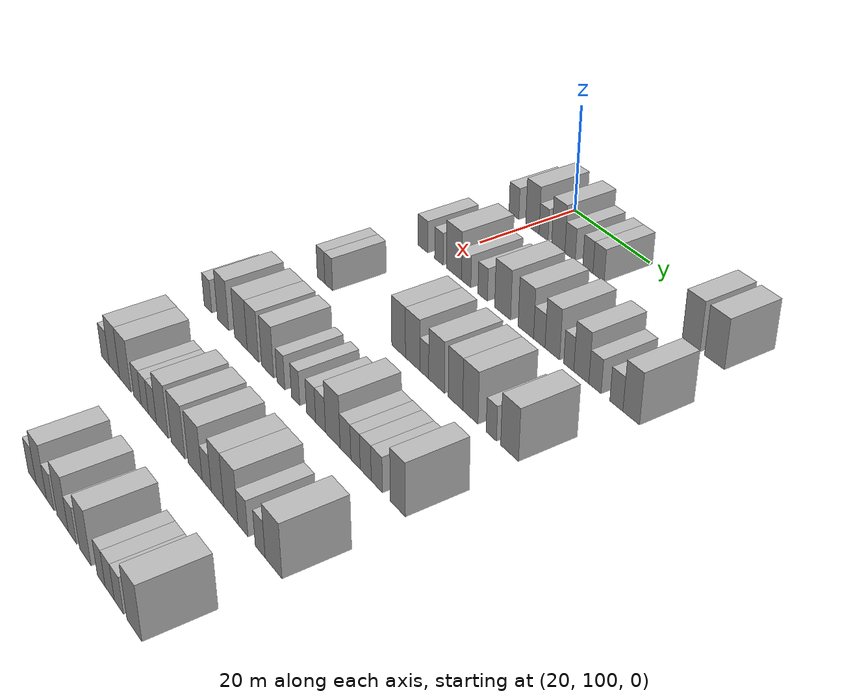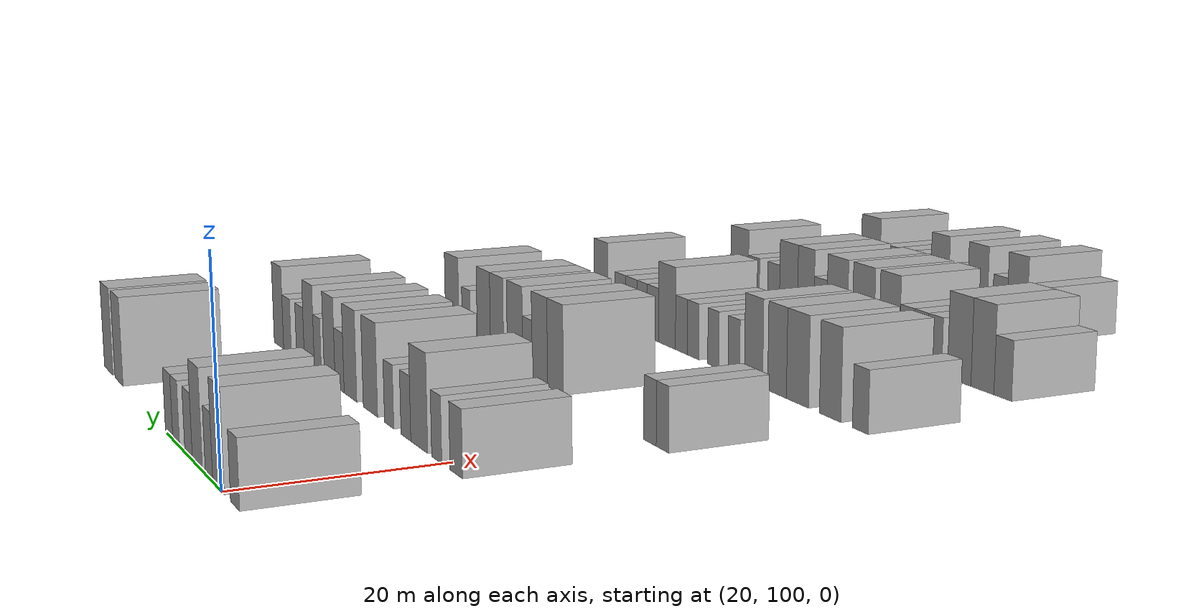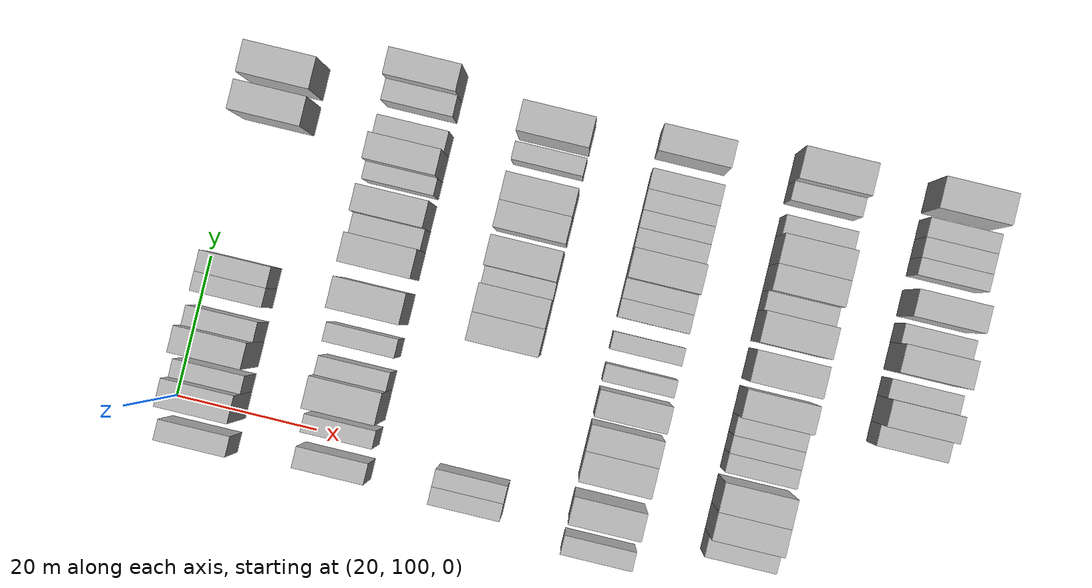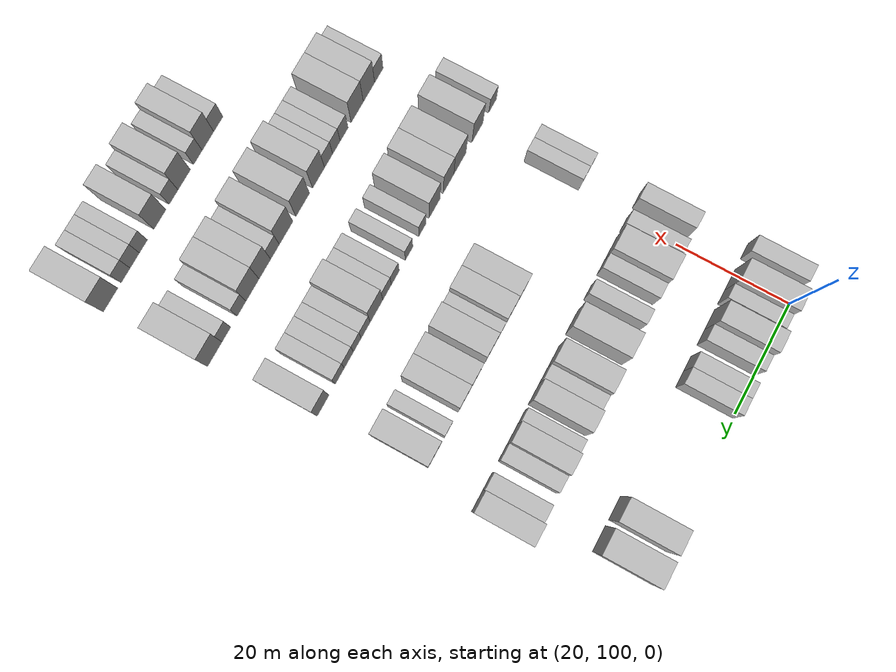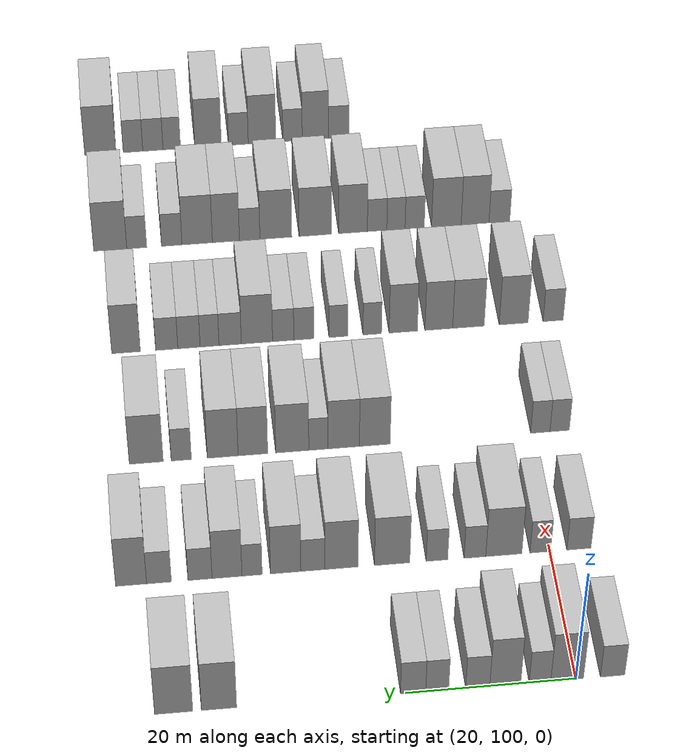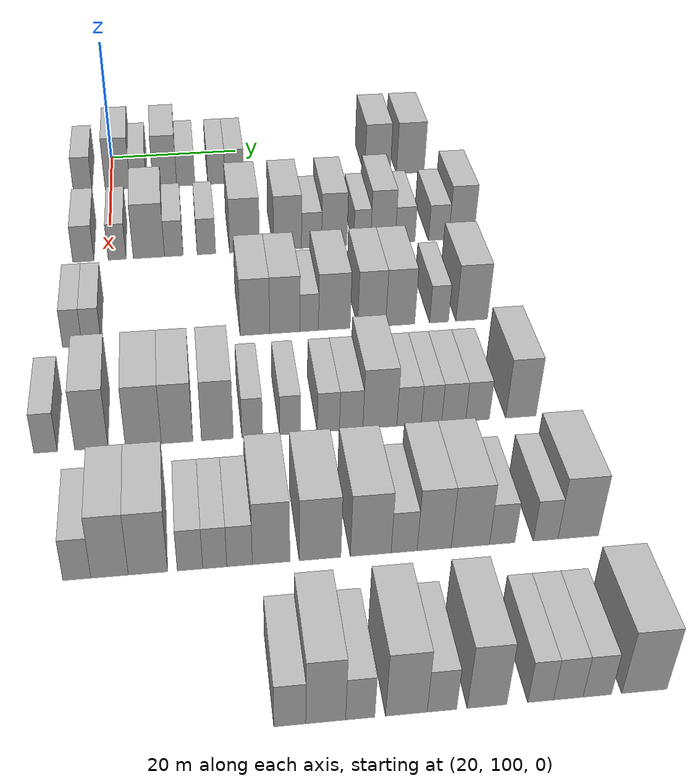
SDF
<sdf version="1.6">
 <world name="default">
  <model name="building_102">
   <static>1</static>
   <pose>25.0000 95.7003 0 0.000000 0.000000 0.000000</pose>
   <link name="link">
    <pose>0 0 3.00 0 0 0</pose>
    <collision name="collision"><geometry><box><size>10.0000 2.8826 6.0000</size></box></geometry></collision>
    <visual name="visual">
     <cast_shadows>0</cast_shadows>
     <geometry><box><size>10.0000 2.8826 6.0000</size></box></geometry>
     <material>
      <script>
       <uri>model://HANNAS_wall/materials/scripts</uri>
       <uri>model://HANNAS_wall/materials/textures</uri>
       <name>vrc/HANNAS_wall</name>
      </script>
     </material>
    </visual>
   </link>
  </model>
  <model name="building_103">
   <static>1</static>
   <pose>25.0000 101.0669 0 0.000000 0.000000 0.000000</pose>
   <link name="link">
    <pose>0 0 4.50 0 0 0</pose>
    <collision name="collision"><geometry><box><size>10.0000 3.8505 9.0000</size></box></geometry></collision>
    <visual name="visual">
     <cast_shadows>0</cast_shadows>
     <geometry><box><size>10.0000 3.8505 9.0000</size></box></geometry>
     <material>
      <script>
       <uri>model://HANNAS_wall/materials/scripts</uri>
       <uri>model://HANNAS_wall/materials/textures</uri>
       <name>vrc/HANNAS_wall</name>
      </script>
     </material>
    </visual>
   </link>
  </model>
  <model name="building_104">
   <static>1</static>
   <pose>25.0000 104.2623 0 0.000000 0.000000 0.000000</pose>
   <link name="link">
    <pose>0 0 3.00 0 0 0</pose>
    <collision name="collision"><geometry><box><size>10.0000 2.5403 6.0000</size></box></geometry></collision>
    <visual name="visual">
     <cast_shadows>0</cast_shadows>
     <geometry><box><size>10.0000 2.5403 6.0000</size></box></geometry>
     <material>
      <script>
       <uri>model://HANNAS_wall/materials/scripts</uri>
       <uri>model://HANNAS_wall/materials/textures</uri>
       <name>vrc/HANNAS_wall</name>
      </script>
     </material>
    </visual>
   </link>
  </model>
  <model name="building_105">
   <static>1</static>
   <pose>25.0000 108.3539 0 0.000000 0.000000 0.000000</pose>
   <link name="link">
    <pose>0 0 4.50 0 0 0</pose>
    <collision name="collision"><geometry><box><size>10.0000 3.6429 9.0000</size></box></geometry></collision>
    <visual name="visual">
     <cast_shadows>0</cast_shadows>
     <geometry><box><size>10.0000 3.6429 9.0000</size></box></geometry>
     <material>
      <script>
       <uri>model://HANNAS_wall/materials/scripts</uri>
       <uri>model://HANNAS_wall/materials/textures</uri>
       <name>vrc/HANNAS_wall</name>
      </script>
     </material>
    </visual>
   </link>
  </model>
  <model name="building_106">
   <static>1</static>
   <pose>25.0000 111.5871 0 0.000000 0.000000 0.000000</pose>
   <link name="link">
    <pose>0 0 3.00 0 0 0</pose>
    <collision name="collision"><geometry><box><size>10.0000 2.8235 6.0000</size></box></geometry></collision>
    <visual name="visual">
     <cast_shadows>0</cast_shadows>
     <geometry><box><size>10.0000 2.8235 6.0000</size></box></geometry>
     <material>
      <script>
       <uri>model://HANNAS_wall/materials/scripts</uri>
       <uri>model://HANNAS_wall/materials/textures</uri>
       <name>vrc/HANNAS_wall</name>
      </script>
     </material>
    </visual>
   </link>
  </model>
  <model name="building_107">
   <static>1</static>
   <pose>25.0000 116.3438 0 0.000000 0.000000 0.000000</pose>
   <link name="link">
    <pose>0 0 3.00 0 0 0</pose>
    <collision name="collision"><geometry><box><size>10.0000 2.6898 6.0000</size></box></geometry></collision>
    <visual name="visual">
     <cast_shadows>0</cast_shadows>
     <geometry><box><size>10.0000 2.6898 6.0000</size></box></geometry>
     <material>
      <script>
       <uri>model://HANNAS_wall/materials/scripts</uri>
       <uri>model://HANNAS_wall/materials/textures</uri>
       <name>vrc/HANNAS_wall</name>
      </script>
     </material>
    </visual>
   </link>
  </model>
  <model name="building_108">
   <static>1</static>
   <pose>25.0000 119.1616 0 0.000000 0.000000 0.000000</pose>
   <link name="link">
    <pose>0 0 3.00 0 0 0</pose>
    <collision name="collision"><geometry><box><size>10.0000 2.9459 6.0000</size></box></geometry></collision>
    <visual name="visual">
     <cast_shadows>0</cast_shadows>
     <geometry><box><size>10.0000 2.9459 6.0000</size></box></geometry>
     <material>
      <script>
       <uri>model://HANNAS_wall/materials/scripts</uri>
       <uri>model://HANNAS_wall/materials/textures</uri>
       <name>vrc/HANNAS_wall</name>
      </script>
     </material>
    </visual>
   </link>
  </model>
  <model name="building_109">
   <static>1</static>
   <pose>25.0000 141.7451 0 0.000000 0.000000 0.000000</pose>
   <link name="link">
    <pose>0 0 4.50 0 0 0</pose>
    <collision name="collision"><geometry><box><size>10.0000 4.0737 9.0000</size></box></geometry></collision>
    <visual name="visual">
     <cast_shadows>0</cast_shadows>
     <geometry><box><size>10.0000 4.0737 9.0000</size></box></geometry>
     <material>
      <script>
       <uri>model://HANNAS_wall/materials/scripts</uri>
       <uri>model://HANNAS_wall/materials/textures</uri>
       <name>vrc/HANNAS_wall</name>
      </script>
     </material>
    </visual>
   </link>
  </model>
  <model name="building_110">
   <static>1</static>
   <pose>25.0000 146.9889 0 0.000000 0.000000 0.000000</pose>
   <link name="link">
    <pose>0 0 4.50 0 0 0</pose>
    <collision name="collision"><geometry><box><size>10.0000 4.4137 9.0000</size></box></geometry></collision>
    <visual name="visual">
     <cast_shadows>0</cast_shadows>
     <geometry><box><size>10.0000 4.4137 9.0000</size></box></geometry>
     <material>
      <script>
       <uri>model://HANNAS_wall/materials/scripts</uri>
       <uri>model://HANNAS_wall/materials/textures</uri>
       <name>vrc/HANNAS_wall</name>
      </script>
     </material>
    </visual>
   </link>
  </model>
  <model name="building_267">
   <static>1</static>
   <pose>44.0000 96.4877 0 0.000000 0.000000 0.000000</pose>
   <link name="link">
    <pose>0 0 3.00 0 0 0</pose>
    <collision name="collision"><geometry><box><size>10.0000 2.9703 6.0000</size></box></geometry></collision>
    <visual name="visual">
     <cast_shadows>0</cast_shadows>
     <geometry><box><size>10.0000 2.9703 6.0000</size></box></geometry>
     <material>
      <script>
       <uri>model://HANNAS_wall/materials/scripts</uri>
       <uri>model://HANNAS_wall/materials/textures</uri>
       <name>vrc/HANNAS_wall</name>
      </script>
     </material>
    </visual>
   </link>
  </model>
  <model name="building_268">
   <static>1</static>
   <pose>44.0000 101.2369 0 0.000000 0.000000 0.000000</pose>
   <link name="link">
    <pose>0 0 3.00 0 0 0</pose>
    <collision name="collision"><geometry><box><size>10.0000 2.5279 6.0000</size></box></geometry></collision>
    <visual name="visual">
     <cast_shadows>0</cast_shadows>
     <geometry><box><size>10.0000 2.5279 6.0000</size></box></geometry>
     <material>
      <script>
       <uri>model://HANNAS_wall/materials/scripts</uri>
       <uri>model://HANNAS_wall/materials/textures</uri>
       <name>vrc/HANNAS_wall</name>
      </script>
     </material>
    </visual>
   </link>
  </model>
  <model name="building_269">
   <static>1</static>
   <pose>44.0000 105.7129 0 0.000000 0.000000 0.000000</pose>
   <link name="link">
    <pose>0 0 4.50 0 0 0</pose>
    <collision name="collision"><geometry><box><size>10.0000 4.4242 9.0000</size></box></geometry></collision>
    <visual name="visual">
     <cast_shadows>0</cast_shadows>
     <geometry><box><size>10.0000 4.4242 9.0000</size></box></geometry>
     <material>
      <script>
       <uri>model://HANNAS_wall/materials/scripts</uri>
       <uri>model://HANNAS_wall/materials/textures</uri>
       <name>vrc/HANNAS_wall</name>
      </script>
     </material>
    </visual>
   </link>
  </model>
  <model name="building_270">
   <static>1</static>
   <pose>44.0000 109.2523 0 0.000000 0.000000 0.000000</pose>
   <link name="link">
    <pose>0 0 3.00 0 0 0</pose>
    <collision name="collision"><geometry><box><size>10.0000 2.6546 6.0000</size></box></geometry></collision>
    <visual name="visual">
     <cast_shadows>0</cast_shadows>
     <geometry><box><size>10.0000 2.6546 6.0000</size></box></geometry>
     <material>
      <script>
       <uri>model://HANNAS_wall/materials/scripts</uri>
       <uri>model://HANNAS_wall/materials/textures</uri>
       <name>vrc/HANNAS_wall</name>
      </script>
     </material>
    </visual>
   </link>
  </model>
  <model name="building_271">
   <static>1</static>
   <pose>44.0000 113.8956 0 0.000000 0.000000 0.000000</pose>
   <link name="link">
    <pose>0 0 3.00 0 0 0</pose>
    <collision name="collision"><geometry><box><size>10.0000 2.6319 6.0000</size></box></geometry></collision>
    <visual name="visual">
     <cast_shadows>0</cast_shadows>
     <geometry><box><size>10.0000 2.6319 6.0000</size></box></geometry>
     <material>
      <script>
       <uri>model://HANNAS_wall/materials/scripts</uri>
       <uri>model://HANNAS_wall/materials/textures</uri>
       <name>vrc/HANNAS_wall</name>
      </script>
     </material>
    </visual>
   </link>
  </model>
  <model name="building_272">
   <static>1</static>
   <pose>44.0000 119.3631 0 0.000000 0.000000 0.000000</pose>
   <link name="link">
    <pose>0 0 4.50 0 0 0</pose>
    <collision name="collision"><geometry><box><size>10.0000 4.3031 9.0000</size></box></geometry></collision>
    <visual name="visual">
     <cast_shadows>0</cast_shadows>
     <geometry><box><size>10.0000 4.3031 9.0000</size></box></geometry>
     <material>
      <script>
       <uri>model://HANNAS_wall/materials/scripts</uri>
       <uri>model://HANNAS_wall/materials/textures</uri>
       <name>vrc/HANNAS_wall</name>
      </script>
     </material>
    </visual>
   </link>
  </model>
  <model name="building_273">
   <static>1</static>
   <pose>44.0000 125.5256 0 0.000000 0.000000 0.000000</pose>
   <link name="link">
    <pose>0 0 4.50 0 0 0</pose>
    <collision name="collision"><geometry><box><size>10.0000 4.0220 9.0000</size></box></geometry></collision>
    <visual name="visual">
     <cast_shadows>0</cast_shadows>
     <geometry><box><size>10.0000 4.0220 9.0000</size></box></geometry>
     <material>
      <script>
       <uri>model://HANNAS_wall/materials/scripts</uri>
       <uri>model://HANNAS_wall/materials/textures</uri>
       <name>vrc/HANNAS_wall</name>
      </script>
     </material>
    </visual>
   </link>
  </model>
  <model name="building_274">
   <static>1</static>
   <pose>44.0000 128.9947 0 0.000000 0.000000 0.000000</pose>
   <link name="link">
    <pose>0 0 3.00 0 0 0</pose>
    <collision name="collision"><geometry><box><size>10.0000 2.9161 6.0000</size></box></geometry></collision>
    <visual name="visual">
     <cast_shadows>0</cast_shadows>
     <geometry><box><size>10.0000 2.9161 6.0000</size></box></geometry>
     <material>
      <script>
       <uri>model://HANNAS_wall/materials/scripts</uri>
       <uri>model://HANNAS_wall/materials/textures</uri>
       <name>vrc/HANNAS_wall</name>
      </script>
     </material>
    </visual>
   </link>
  </model>
  <model name="building_275">
   <static>1</static>
   <pose>44.0000 132.2923 0 0.000000 0.000000 0.000000</pose>
   <link name="link">
    <pose>0 0 4.50 0 0 0</pose>
    <collision name="collision"><geometry><box><size>10.0000 3.6792 9.0000</size></box></geometry></collision>
    <visual name="visual">
     <cast_shadows>0</cast_shadows>
     <geometry><box><size>10.0000 3.6792 9.0000</size></box></geometry>
     <material>
      <script>
       <uri>model://HANNAS_wall/materials/scripts</uri>
       <uri>model://HANNAS_wall/materials/textures</uri>
       <name>vrc/HANNAS_wall</name>
      </script>
     </material>
    </visual>
   </link>
  </model>
  <model name="building_276">
   <static>1</static>
   <pose>44.0000 136.3563 0 0.000000 0.000000 0.000000</pose>
   <link name="link">
    <pose>0 0 3.00 0 0 0</pose>
    <collision name="collision"><geometry><box><size>10.0000 2.4487 6.0000</size></box></geometry></collision>
    <visual name="visual">
     <cast_shadows>0</cast_shadows>
     <geometry><box><size>10.0000 2.4487 6.0000</size></box></geometry>
     <material>
      <script>
       <uri>model://HANNAS_wall/materials/scripts</uri>
       <uri>model://HANNAS_wall/materials/textures</uri>
       <name>vrc/HANNAS_wall</name>
      </script>
     </material>
    </visual>
   </link>
  </model>
  <model name="building_277">
   <static>1</static>
   <pose>44.0000 139.3862 0 0.000000 0.000000 0.000000</pose>
   <link name="link">
    <pose>0 0 4.50 0 0 0</pose>
    <collision name="collision"><geometry><box><size>10.0000 3.6111 9.0000</size></box></geometry></collision>
    <visual name="visual">
     <cast_shadows>0</cast_shadows>
     <geometry><box><size>10.0000 3.6111 9.0000</size></box></geometry>
     <material>
      <script>
       <uri>model://HANNAS_wall/materials/scripts</uri>
       <uri>model://HANNAS_wall/materials/textures</uri>
       <name>vrc/HANNAS_wall</name>
      </script>
     </material>
    </visual>
   </link>
  </model>
  <model name="building_278">
   <static>1</static>
   <pose>44.0000 142.6418 0 0.000000 0.000000 0.000000</pose>
   <link name="link">
    <pose>0 0 3.00 0 0 0</pose>
    <collision name="collision"><geometry><box><size>10.0000 2.9002 6.0000</size></box></geometry></collision>
    <visual name="visual">
     <cast_shadows>0</cast_shadows>
     <geometry><box><size>10.0000 2.9002 6.0000</size></box></geometry>
     <material>
      <script>
       <uri>model://HANNAS_wall/materials/scripts</uri>
       <uri>model://HANNAS_wall/materials/textures</uri>
       <name>vrc/HANNAS_wall</name>
      </script>
     </material>
    </visual>
   </link>
  </model>
  <model name="building_279">
   <static>1</static>
   <pose>44.0000 147.5837 0 0.000000 0.000000 0.000000</pose>
   <link name="link">
    <pose>0 0 3.00 0 0 0</pose>
    <collision name="collision"><geometry><box><size>10.0000 2.9836 6.0000</size></box></geometry></collision>
    <visual name="visual">
     <cast_shadows>0</cast_shadows>
     <geometry><box><size>10.0000 2.9836 6.0000</size></box></geometry>
     <material>
      <script>
       <uri>model://HANNAS_wall/materials/scripts</uri>
       <uri>model://HANNAS_wall/materials/textures</uri>
       <name>vrc/HANNAS_wall</name>
      </script>
     </material>
    </visual>
   </link>
  </model>
  <model name="building_280">
   <static>1</static>
   <pose>44.0000 150.9347 0 0.000000 0.000000 0.000000</pose>
   <link name="link">
    <pose>0 0 4.50 0 0 0</pose>
    <collision name="collision"><geometry><box><size>10.0000 3.7184 9.0000</size></box></geometry></collision>
    <visual name="visual">
     <cast_shadows>0</cast_shadows>
     <geometry><box><size>10.0000 3.7184 9.0000</size></box></geometry>
     <material>
      <script>
       <uri>model://HANNAS_wall/materials/scripts</uri>
       <uri>model://HANNAS_wall/materials/textures</uri>
       <name>vrc/HANNAS_wall</name>
      </script>
     </material>
    </visual>
   </link>
  </model>
  <model name="building_436">
   <static>1</static>
   <pose>63.0000 95.7690 0 0.000000 0.000000 0.000000</pose>
   <link name="link">
    <pose>0 0 3.00 0 0 0</pose>
    <collision name="collision"><geometry><box><size>10.0000 2.4666 6.0000</size></box></geometry></collision>
    <visual name="visual">
     <cast_shadows>0</cast_shadows>
     <geometry><box><size>10.0000 2.4666 6.0000</size></box></geometry>
     <material>
      <script>
       <uri>model://HANNAS_wall/materials/scripts</uri>
       <uri>model://HANNAS_wall/materials/textures</uri>
       <name>vrc/HANNAS_wall</name>
      </script>
     </material>
    </visual>
   </link>
  </model>
  <model name="building_437">
   <static>1</static>
   <pose>63.0000 98.2369 0 0.000000 0.000000 0.000000</pose>
   <link name="link">
    <pose>0 0 3.00 0 0 0</pose>
    <collision name="collision"><geometry><box><size>10.0000 2.4693 6.0000</size></box></geometry></collision>
    <visual name="visual">
     <cast_shadows>0</cast_shadows>
     <geometry><box><size>10.0000 2.4693 6.0000</size></box></geometry>
     <material>
      <script>
       <uri>model://HANNAS_wall/materials/scripts</uri>
       <uri>model://HANNAS_wall/materials/textures</uri>
       <name>vrc/HANNAS_wall</name>
      </script>
     </material>
    </visual>
   </link>
  </model>
  <model name="building_438">
   <static>1</static>
   <pose>63.0000 119.3128 0 0.000000 0.000000 0.000000</pose>
   <link name="link">
    <pose>0 0 4.50 0 0 0</pose>
    <collision name="collision"><geometry><box><size>10.0000 3.8942 9.0000</size></box></geometry></collision>
    <visual name="visual">
     <cast_shadows>0</cast_shadows>
     <geometry><box><size>10.0000 3.8942 9.0000</size></box></geometry>
     <material>
      <script>
       <uri>model://HANNAS_wall/materials/scripts</uri>
       <uri>model://HANNAS_wall/materials/textures</uri>
       <name>vrc/HANNAS_wall</name>
      </script>
     </material>
    </visual>
   </link>
  </model>
  <model name="building_439">
   <static>1</static>
   <pose>63.0000 123.2383 0 0.000000 0.000000 0.000000</pose>
   <link name="link">
    <pose>0 0 4.50 0 0 0</pose>
    <collision name="collision"><geometry><box><size>10.0000 3.9567 9.0000</size></box></geometry></collision>
    <visual name="visual">
     <cast_shadows>0</cast_shadows>
     <geometry><box><size>10.0000 3.9567 9.0000</size></box></geometry>
     <material>
      <script>
       <uri>model://HANNAS_wall/materials/scripts</uri>
       <uri>model://HANNAS_wall/materials/textures</uri>
       <name>vrc/HANNAS_wall</name>
      </script>
     </material>
    </visual>
   </link>
  </model>
  <model name="building_440">
   <static>1</static>
   <pose>63.0000 126.4315 0 0.000000 0.000000 0.000000</pose>
   <link name="link">
    <pose>0 0 3.00 0 0 0</pose>
    <collision name="collision"><geometry><box><size>10.0000 2.4296 6.0000</size></box></geometry></collision>
    <visual name="visual">
     <cast_shadows>0</cast_shadows>
     <geometry><box><size>10.0000 2.4296 6.0000</size></box></geometry>
     <material>
      <script>
       <uri>model://HANNAS_wall/materials/scripts</uri>
       <uri>model://HANNAS_wall/materials/textures</uri>
       <name>vrc/HANNAS_wall</name>
      </script>
     </material>
    </visual>
   </link>
  </model>
  <model name="building_441">
   <static>1</static>
   <pose>63.0000 129.7364 0 0.000000 0.000000 0.000000</pose>
   <link name="link">
    <pose>0 0 4.50 0 0 0</pose>
    <collision name="collision"><geometry><box><size>10.0000 4.1802 9.0000</size></box></geometry></collision>
    <visual name="visual">
     <cast_shadows>0</cast_shadows>
     <geometry><box><size>10.0000 4.1802 9.0000</size></box></geometry>
     <material>
      <script>
       <uri>model://HANNAS_wall/materials/scripts</uri>
       <uri>model://HANNAS_wall/materials/textures</uri>
       <name>vrc/HANNAS_wall</name>
      </script>
     </material>
    </visual>
   </link>
  </model>
  <model name="building_442">
   <static>1</static>
   <pose>63.0000 134.6900 0 0.000000 0.000000 0.000000</pose>
   <link name="link">
    <pose>0 0 4.50 0 0 0</pose>
    <collision name="collision"><geometry><box><size>10.0000 3.7271 9.0000</size></box></geometry></collision>
    <visual name="visual">
     <cast_shadows>0</cast_shadows>
     <geometry><box><size>10.0000 3.7271 9.0000</size></box></geometry>
     <material>
      <script>
       <uri>model://HANNAS_wall/materials/scripts</uri>
       <uri>model://HANNAS_wall/materials/textures</uri>
       <name>vrc/HANNAS_wall</name>
      </script>
     </material>
    </visual>
   </link>
  </model>
  <model name="building_443">
   <static>1</static>
   <pose>63.0000 138.4889 0 0.000000 0.000000 0.000000</pose>
   <link name="link">
    <pose>0 0 4.50 0 0 0</pose>
    <collision name="collision"><geometry><box><size>10.0000 3.8706 9.0000</size></box></geometry></collision>
    <visual name="visual">
     <cast_shadows>0</cast_shadows>
     <geometry><box><size>10.0000 3.8706 9.0000</size></box></geometry>
     <material>
      <script>
       <uri>model://HANNAS_wall/materials/scripts</uri>
       <uri>model://HANNAS_wall/materials/textures</uri>
       <name>vrc/HANNAS_wall</name>
      </script>
     </material>
    </visual>
   </link>
  </model>
  <model name="building_444">
   <static>1</static>
   <pose>63.0000 143.6901 0 0.000000 0.000000 0.000000</pose>
   <link name="link">
    <pose>0 0 3.00 0 0 0</pose>
    <collision name="collision"><geometry><box><size>10.0000 2.5319 6.0000</size></box></geometry></collision>
    <visual name="visual">
     <cast_shadows>0</cast_shadows>
     <geometry><box><size>10.0000 2.5319 6.0000</size></box></geometry>
     <material>
      <script>
       <uri>model://HANNAS_wall/materials/scripts</uri>
       <uri>model://HANNAS_wall/materials/textures</uri>
       <name>vrc/HANNAS_wall</name>
      </script>
     </material>
    </visual>
   </link>
  </model>
  <model name="building_445">
   <static>1</static>
   <pose>63.0000 148.0767 0 0.000000 0.000000 0.000000</pose>
   <link name="link">
    <pose>0 0 4.50 0 0 0</pose>
    <collision name="collision"><geometry><box><size>10.0000 4.2413 9.0000</size></box></geometry></collision>
    <visual name="visual">
     <cast_shadows>0</cast_shadows>
     <geometry><box><size>10.0000 4.2413 9.0000</size></box></geometry>
     <material>
      <script>
       <uri>model://HANNAS_wall/materials/scripts</uri>
       <uri>model://HANNAS_wall/materials/textures</uri>
       <name>vrc/HANNAS_wall</name>
      </script>
     </material>
    </visual>
   </link>
  </model>
  <model name="building_612">
   <static>1</static>
   <pose>82.0000 93.5428 0 0.000000 0.000000 0.000000</pose>
   <link name="link">
    <pose>0 0 3.00 0 0 0</pose>
    <collision name="collision"><geometry><box><size>10.0000 2.6677 6.0000</size></box></geometry></collision>
    <visual name="visual">
     <cast_shadows>0</cast_shadows>
     <geometry><box><size>10.0000 2.6677 6.0000</size></box></geometry>
     <material>
      <script>
       <uri>model://HANNAS_wall/materials/scripts</uri>
       <uri>model://HANNAS_wall/materials/textures</uri>
       <name>vrc/HANNAS_wall</name>
      </script>
     </material>
    </visual>
   </link>
  </model>
  <model name="building_613">
   <static>1</static>
   <pose>82.0000 98.7870 0 0.000000 0.000000 0.000000</pose>
   <link name="link">
    <pose>0 0 4.50 0 0 0</pose>
    <collision name="collision"><geometry><box><size>10.0000 3.8207 9.0000</size></box></geometry></collision>
    <visual name="visual">
     <cast_shadows>0</cast_shadows>
     <geometry><box><size>10.0000 3.8207 9.0000</size></box></geometry>
     <material>
      <script>
       <uri>model://HANNAS_wall/materials/scripts</uri>
       <uri>model://HANNAS_wall/materials/textures</uri>
       <name>vrc/HANNAS_wall</name>
      </script>
     </material>
    </visual>
   </link>
  </model>
  <model name="building_614">
   <static>1</static>
   <pose>82.0000 104.7833 0 0.000000 0.000000 0.000000</pose>
   <link name="link">
    <pose>0 0 4.50 0 0 0</pose>
    <collision name="collision"><geometry><box><size>10.0000 4.1719 9.0000</size></box></geometry></collision>
    <visual name="visual">
     <cast_shadows>0</cast_shadows>
     <geometry><box><size>10.0000 4.1719 9.0000</size></box></geometry>
     <material>
      <script>
       <uri>model://HANNAS_wall/materials/scripts</uri>
       <uri>model://HANNAS_wall/materials/textures</uri>
       <name>vrc/HANNAS_wall</name>
      </script>
     </material>
    </visual>
   </link>
  </model>
  <model name="building_615">
   <static>1</static>
   <pose>82.0000 108.6993 0 0.000000 0.000000 0.000000</pose>
   <link name="link">
    <pose>0 0 4.50 0 0 0</pose>
    <collision name="collision"><geometry><box><size>10.0000 3.6602 9.0000</size></box></geometry></collision>
    <visual name="visual">
     <cast_shadows>0</cast_shadows>
     <geometry><box><size>10.0000 3.6602 9.0000</size></box></geometry>
     <material>
      <script>
       <uri>model://HANNAS_wall/materials/scripts</uri>
       <uri>model://HANNAS_wall/materials/textures</uri>
       <name>vrc/HANNAS_wall</name>
      </script>
     </material>
    </visual>
   </link>
  </model>
  <model name="building_616">
   <static>1</static>
   <pose>82.0000 113.3918 0 0.000000 0.000000 0.000000</pose>
   <link name="link">
    <pose>0 0 4.50 0 0 0</pose>
    <collision name="collision"><geometry><box><size>10.0000 3.7248 9.0000</size></box></geometry></collision>
    <visual name="visual">
     <cast_shadows>0</cast_shadows>
     <geometry><box><size>10.0000 3.7248 9.0000</size></box></geometry>
     <material>
      <script>
       <uri>model://HANNAS_wall/materials/scripts</uri>
       <uri>model://HANNAS_wall/materials/textures</uri>
       <name>vrc/HANNAS_wall</name>
      </script>
     </material>
    </visual>
   </link>
  </model>
  <model name="building_617">
   <static>1</static>
   <pose>82.0000 117.4714 0 0.000000 0.000000 0.000000</pose>
   <link name="link">
    <pose>0 0 3.00 0 0 0</pose>
    <collision name="collision"><geometry><box><size>10.0000 2.4345 6.0000</size></box></geometry></collision>
    <visual name="visual">
     <cast_shadows>0</cast_shadows>
     <geometry><box><size>10.0000 2.4345 6.0000</size></box></geometry>
     <material>
      <script>
       <uri>model://HANNAS_wall/materials/scripts</uri>
       <uri>model://HANNAS_wall/materials/textures</uri>
       <name>vrc/HANNAS_wall</name>
      </script>
     </material>
    </visual>
   </link>
  </model>
  <model name="building_618">
   <static>1</static>
   <pose>82.0000 121.9197 0 0.000000 0.000000 0.000000</pose>
   <link name="link">
    <pose>0 0 3.00 0 0 0</pose>
    <collision name="collision"><geometry><box><size>10.0000 2.4621 6.0000</size></box></geometry></collision>
    <visual name="visual">
     <cast_shadows>0</cast_shadows>
     <geometry><box><size>10.0000 2.4621 6.0000</size></box></geometry>
     <material>
      <script>
       <uri>model://HANNAS_wall/materials/scripts</uri>
       <uri>model://HANNAS_wall/materials/textures</uri>
       <name>vrc/HANNAS_wall</name>
      </script>
     </material>
    </visual>
   </link>
  </model>
  <model name="building_619">
   <static>1</static>
   <pose>82.0000 126.4598 0 0.000000 0.000000 0.000000</pose>
   <link name="link">
    <pose>0 0 3.00 0 0 0</pose>
    <collision name="collision"><geometry><box><size>10.0000 2.6179 6.0000</size></box></geometry></collision>
    <visual name="visual">
     <cast_shadows>0</cast_shadows>
     <geometry><box><size>10.0000 2.6179 6.0000</size></box></geometry>
     <material>
      <script>
       <uri>model://HANNAS_wall/materials/scripts</uri>
       <uri>model://HANNAS_wall/materials/textures</uri>
       <name>vrc/HANNAS_wall</name>
      </script>
     </material>
    </visual>
   </link>
  </model>
  <model name="building_620">
   <static>1</static>
   <pose>82.0000 129.1649 0 0.000000 0.000000 0.000000</pose>
   <link name="link">
    <pose>0 0 3.00 0 0 0</pose>
    <collision name="collision"><geometry><box><size>10.0000 2.7923 6.0000</size></box></geometry></collision>
    <visual name="visual">
     <cast_shadows>0</cast_shadows>
     <geometry><box><size>10.0000 2.7923 6.0000</size></box></geometry>
     <material>
      <script>
       <uri>model://HANNAS_wall/materials/scripts</uri>
       <uri>model://HANNAS_wall/materials/textures</uri>
       <name>vrc/HANNAS_wall</name>
      </script>
     </material>
    </visual>
   </link>
  </model>
  <model name="building_621">
   <static>1</static>
   <pose>82.0000 132.6015 0 0.000000 0.000000 0.000000</pose>
   <link name="link">
    <pose>0 0 4.50 0 0 0</pose>
    <collision name="collision"><geometry><box><size>10.0000 4.0810 9.0000</size></box></geometry></collision>
    <visual name="visual">
     <cast_shadows>0</cast_shadows>
     <geometry><box><size>10.0000 4.0810 9.0000</size></box></geometry>
     <material>
      <script>
       <uri>model://HANNAS_wall/materials/scripts</uri>
       <uri>model://HANNAS_wall/materials/textures</uri>
       <name>vrc/HANNAS_wall</name>
      </script>
     </material>
    </visual>
   </link>
  </model>
  <model name="building_622">
   <static>1</static>
   <pose>82.0000 136.0995 0 0.000000 0.000000 0.000000</pose>
   <link name="link">
    <pose>0 0 3.00 0 0 0</pose>
    <collision name="collision"><geometry><box><size>10.0000 2.9149 6.0000</size></box></geometry></collision>
    <visual name="visual">
     <cast_shadows>0</cast_shadows>
     <geometry><box><size>10.0000 2.9149 6.0000</size></box></geometry>
     <material>
      <script>
       <uri>model://HANNAS_wall/materials/scripts</uri>
       <uri>model://HANNAS_wall/materials/textures</uri>
       <name>vrc/HANNAS_wall</name>
      </script>
     </material>
    </visual>
   </link>
  </model>
  <model name="building_623">
   <static>1</static>
   <pose>82.0000 138.7932 0 0.000000 0.000000 0.000000</pose>
   <link name="link">
    <pose>0 0 3.00 0 0 0</pose>
    <collision name="collision"><geometry><box><size>10.0000 2.4727 6.0000</size></box></geometry></collision>
    <visual name="visual">
     <cast_shadows>0</cast_shadows>
     <geometry><box><size>10.0000 2.4727 6.0000</size></box></geometry>
     <material>
      <script>
       <uri>model://HANNAS_wall/materials/scripts</uri>
       <uri>model://HANNAS_wall/materials/textures</uri>
       <name>vrc/HANNAS_wall</name>
      </script>
     </material>
    </visual>
   </link>
  </model>
  <model name="building_624">
   <static>1</static>
   <pose>82.0000 141.4815 0 0.000000 0.000000 0.000000</pose>
   <link name="link">
    <pose>0 0 3.00 0 0 0</pose>
    <collision name="collision"><geometry><box><size>10.0000 2.9038 6.0000</size></box></geometry></collision>
    <visual name="visual">
     <cast_shadows>0</cast_shadows>
     <geometry><box><size>10.0000 2.9038 6.0000</size></box></geometry>
     <material>
      <script>
       <uri>model://HANNAS_wall/materials/scripts</uri>
       <uri>model://HANNAS_wall/materials/textures</uri>
       <name>vrc/HANNAS_wall</name>
      </script>
     </material>
    </visual>
   </link>
  </model>
  <model name="building_625">
   <static>1</static>
   <pose>82.0000 144.3735 0 0.000000 0.000000 0.000000</pose>
   <link name="link">
    <pose>0 0 3.00 0 0 0</pose>
    <collision name="collision"><geometry><box><size>10.0000 2.8803 6.0000</size></box></geometry></collision>
    <visual name="visual">
     <cast_shadows>0</cast_shadows>
     <geometry><box><size>10.0000 2.8803 6.0000</size></box></geometry>
     <material>
      <script>
       <uri>model://HANNAS_wall/materials/scripts</uri>
       <uri>model://HANNAS_wall/materials/textures</uri>
       <name>vrc/HANNAS_wall</name>
      </script>
     </material>
    </visual>
   </link>
  </model>
  <model name="building_626">
   <static>1</static>
   <pose>82.0000 149.6679 0 0.000000 0.000000 0.000000</pose>
   <link name="link">
    <pose>0 0 4.50 0 0 0</pose>
    <collision name="collision"><geometry><box><size>10.0000 3.7085 9.0000</size></box></geometry></collision>
    <visual name="visual">
     <cast_shadows>0</cast_shadows>
     <geometry><box><size>10.0000 3.7085 9.0000</size></box></geometry>
     <material>
      <script>
       <uri>model://HANNAS_wall/materials/scripts</uri>
       <uri>model://HANNAS_wall/materials/textures</uri>
       <name>vrc/HANNAS_wall</name>
      </script>
     </material>
    </visual>
   </link>
  </model>
  <model name="building_790">
   <static>1</static>
   <pose>101.0000 97.8970 0 0.000000 0.000000 0.000000</pose>
   <link name="link">
    <pose>0 0 3.00 0 0 0</pose>
    <collision name="collision"><geometry><box><size>10.0000 2.8565 6.0000</size></box></geometry></collision>
    <visual name="visual">
     <cast_shadows>0</cast_shadows>
     <geometry><box><size>10.0000 2.8565 6.0000</size></box></geometry>
     <material>
      <script>
       <uri>model://HANNAS_wall/materials/scripts</uri>
       <uri>model://HANNAS_wall/materials/textures</uri>
       <name>vrc/HANNAS_wall</name>
      </script>
     </material>
    </visual>
   </link>
  </model>
  <model name="building_791">
   <static>1</static>
   <pose>101.0000 101.2355 0 0.000000 0.000000 0.000000</pose>
   <link name="link">
    <pose>0 0 4.50 0 0 0</pose>
    <collision name="collision"><geometry><box><size>10.0000 3.8205 9.0000</size></box></geometry></collision>
    <visual name="visual">
     <cast_shadows>0</cast_shadows>
     <geometry><box><size>10.0000 3.8205 9.0000</size></box></geometry>
     <material>
      <script>
       <uri>model://HANNAS_wall/materials/scripts</uri>
       <uri>model://HANNAS_wall/materials/textures</uri>
       <name>vrc/HANNAS_wall</name>
      </script>
     </material>
    </visual>
   </link>
  </model>
  <model name="building_792">
   <static>1</static>
   <pose>101.0000 105.1726 0 0.000000 0.000000 0.000000</pose>
   <link name="link">
    <pose>0 0 4.50 0 0 0</pose>
    <collision name="collision"><geometry><box><size>10.0000 4.0537 9.0000</size></box></geometry></collision>
    <visual name="visual">
     <cast_shadows>0</cast_shadows>
     <geometry><box><size>10.0000 4.0537 9.0000</size></box></geometry>
     <material>
      <script>
       <uri>model://HANNAS_wall/materials/scripts</uri>
       <uri>model://HANNAS_wall/materials/textures</uri>
       <name>vrc/HANNAS_wall</name>
      </script>
     </material>
    </visual>
   </link>
  </model>
  <model name="building_793">
   <static>1</static>
   <pose>101.0000 109.5148 0 0.000000 0.000000 0.000000</pose>
   <link name="link">
    <pose>0 0 3.00 0 0 0</pose>
    <collision name="collision"><geometry><box><size>10.0000 2.6307 6.0000</size></box></geometry></collision>
    <visual name="visual">
     <cast_shadows>0</cast_shadows>
     <geometry><box><size>10.0000 2.6307 6.0000</size></box></geometry>
     <material>
      <script>
       <uri>model://HANNAS_wall/materials/scripts</uri>
       <uri>model://HANNAS_wall/materials/textures</uri>
       <name>vrc/HANNAS_wall</name>
      </script>
     </material>
    </visual>
   </link>
  </model>
  <model name="building_794">
   <static>1</static>
   <pose>101.0000 112.0763 0 0.000000 0.000000 0.000000</pose>
   <link name="link">
    <pose>0 0 3.00 0 0 0</pose>
    <collision name="collision"><geometry><box><size>10.0000 2.4924 6.0000</size></box></geometry></collision>
    <visual name="visual">
     <cast_shadows>0</cast_shadows>
     <geometry><box><size>10.0000 2.4924 6.0000</size></box></geometry>
     <material>
      <script>
       <uri>model://HANNAS_wall/materials/scripts</uri>
       <uri>model://HANNAS_wall/materials/textures</uri>
       <name>vrc/HANNAS_wall</name>
      </script>
     </material>
    </visual>
   </link>
  </model>
  <model name="building_795">
   <static>1</static>
   <pose>101.0000 114.6565 0 0.000000 0.000000 0.000000</pose>
   <link name="link">
    <pose>0 0 3.00 0 0 0</pose>
    <collision name="collision"><geometry><box><size>10.0000 2.6680 6.0000</size></box></geometry></collision>
    <visual name="visual">
     <cast_shadows>0</cast_shadows>
     <geometry><box><size>10.0000 2.6680 6.0000</size></box></geometry>
     <material>
      <script>
       <uri>model://HANNAS_wall/materials/scripts</uri>
       <uri>model://HANNAS_wall/materials/textures</uri>
       <name>vrc/HANNAS_wall</name>
      </script>
     </material>
    </visual>
   </link>
  </model>
  <model name="building_796">
   <static>1</static>
   <pose>101.0000 117.9479 0 0.000000 0.000000 0.000000</pose>
   <link name="link">
    <pose>0 0 4.50 0 0 0</pose>
    <collision name="collision"><geometry><box><size>10.0000 3.9149 9.0000</size></box></geometry></collision>
    <visual name="visual">
     <cast_shadows>0</cast_shadows>
     <geometry><box><size>10.0000 3.9149 9.0000</size></box></geometry>
     <material>
      <script>
       <uri>model://HANNAS_wall/materials/scripts</uri>
       <uri>model://HANNAS_wall/materials/textures</uri>
       <name>vrc/HANNAS_wall</name>
      </script>
     </material>
    </visual>
   </link>
  </model>
  <model name="building_797">
   <static>1</static>
   <pose>101.0000 123.0985 0 0.000000 0.000000 0.000000</pose>
   <link name="link">
    <pose>0 0 4.50 0 0 0</pose>
    <collision name="collision"><geometry><box><size>10.0000 4.3863 9.0000</size></box></geometry></collision>
    <visual name="visual">
     <cast_shadows>0</cast_shadows>
     <geometry><box><size>10.0000 4.3863 9.0000</size></box></geometry>
     <material>
      <script>
       <uri>model://HANNAS_wall/materials/scripts</uri>
       <uri>model://HANNAS_wall/materials/textures</uri>
       <name>vrc/HANNAS_wall</name>
      </script>
     </material>
    </visual>
   </link>
  </model>
  <model name="building_798">
   <static>1</static>
   <pose>101.0000 128.4554 0 0.000000 0.000000 0.000000</pose>
   <link name="link">
    <pose>0 0 4.50 0 0 0</pose>
    <collision name="collision"><geometry><box><size>10.0000 4.3276 9.0000</size></box></geometry></collision>
    <visual name="visual">
     <cast_shadows>0</cast_shadows>
     <geometry><box><size>10.0000 4.3276 9.0000</size></box></geometry>
     <material>
      <script>
       <uri>model://HANNAS_wall/materials/scripts</uri>
       <uri>model://HANNAS_wall/materials/textures</uri>
       <name>vrc/HANNAS_wall</name>
      </script>
     </material>
    </visual>
   </link>
  </model>
  <model name="building_799">
   <static>1</static>
   <pose>101.0000 132.0088 0 0.000000 0.000000 0.000000</pose>
   <link name="link">
    <pose>0 0 3.00 0 0 0</pose>
    <collision name="collision"><geometry><box><size>10.0000 2.7792 6.0000</size></box></geometry></collision>
    <visual name="visual">
     <cast_shadows>0</cast_shadows>
     <geometry><box><size>10.0000 2.7792 6.0000</size></box></geometry>
     <material>
      <script>
       <uri>model://HANNAS_wall/materials/scripts</uri>
       <uri>model://HANNAS_wall/materials/textures</uri>
       <name>vrc/HANNAS_wall</name>
      </script>
     </material>
    </visual>
   </link>
  </model>
  <model name="building_800">
   <static>1</static>
   <pose>101.0000 135.2279 0 0.000000 0.000000 0.000000</pose>
   <link name="link">
    <pose>0 0 4.50 0 0 0</pose>
    <collision name="collision"><geometry><box><size>10.0000 3.6590 9.0000</size></box></geometry></collision>
    <visual name="visual">
     <cast_shadows>0</cast_shadows>
     <geometry><box><size>10.0000 3.6590 9.0000</size></box></geometry>
     <material>
      <script>
       <uri>model://HANNAS_wall/materials/scripts</uri>
       <uri>model://HANNAS_wall/materials/textures</uri>
       <name>vrc/HANNAS_wall</name>
      </script>
     </material>
    </visual>
   </link>
  </model>
  <model name="building_801">
   <static>1</static>
   <pose>101.0000 139.1150 0 0.000000 0.000000 0.000000</pose>
   <link name="link">
    <pose>0 0 4.50 0 0 0</pose>
    <collision name="collision"><geometry><box><size>10.0000 4.1151 9.0000</size></box></geometry></collision>
    <visual name="visual">
     <cast_shadows>0</cast_shadows>
     <geometry><box><size>10.0000 4.1151 9.0000</size></box></geometry>
     <material>
      <script>
       <uri>model://HANNAS_wall/materials/scripts</uri>
       <uri>model://HANNAS_wall/materials/textures</uri>
       <name>vrc/HANNAS_wall</name>
      </script>
     </material>
    </visual>
   </link>
  </model>
  <model name="building_802">
   <static>1</static>
   <pose>101.0000 142.5568 0 0.000000 0.000000 0.000000</pose>
   <link name="link">
    <pose>0 0 3.00 0 0 0</pose>
    <collision name="collision"><geometry><box><size>10.0000 2.7685 6.0000</size></box></geometry></collision>
    <visual name="visual">
     <cast_shadows>0</cast_shadows>
     <geometry><box><size>10.0000 2.7685 6.0000</size></box></geometry>
     <material>
      <script>
       <uri>model://HANNAS_wall/materials/scripts</uri>
       <uri>model://HANNAS_wall/materials/textures</uri>
       <name>vrc/HANNAS_wall</name>
      </script>
     </material>
    </visual>
   </link>
  </model>
  <model name="building_803">
   <static>1</static>
   <pose>101.0000 147.2861 0 0.000000 0.000000 0.000000</pose>
   <link name="link">
    <pose>0 0 3.00 0 0 0</pose>
    <collision name="collision"><geometry><box><size>10.0000 2.6901 6.0000</size></box></geometry></collision>
    <visual name="visual">
     <cast_shadows>0</cast_shadows>
     <geometry><box><size>10.0000 2.6901 6.0000</size></box></geometry>
     <material>
      <script>
       <uri>model://HANNAS_wall/materials/scripts</uri>
       <uri>model://HANNAS_wall/materials/textures</uri>
       <name>vrc/HANNAS_wall</name>
      </script>
     </material>
    </visual>
   </link>
  </model>
  <model name="building_804">
   <static>1</static>
   <pose>101.0000 150.8538 0 0.000000 0.000000 0.000000</pose>
   <link name="link">
    <pose>0 0 4.50 0 0 0</pose>
    <collision name="collision"><geometry><box><size>10.0000 4.4453 9.0000</size></box></geometry></collision>
    <visual name="visual">
     <cast_shadows>0</cast_shadows>
     <geometry><box><size>10.0000 4.4453 9.0000</size></box></geometry>
     <material>
      <script>
       <uri>model://HANNAS_wall/materials/scripts</uri>
       <uri>model://HANNAS_wall/materials/textures</uri>
       <name>vrc/HANNAS_wall</name>
      </script>
     </material>
    </visual>
   </link>
  </model>
  <model name="building_960">
   <static>1</static>
   <pose>120.0000 117.9237 0 0.000000 0.000000 0.000000</pose>
   <link name="link">
    <pose>0 0 3.00 0 0 0</pose>
    <collision name="collision"><geometry><box><size>10.0000 2.9336 6.0000</size></box></geometry></collision>
    <visual name="visual">
     <cast_shadows>0</cast_shadows>
     <geometry><box><size>10.0000 2.9336 6.0000</size></box></geometry>
     <material>
      <script>
       <uri>model://HANNAS_wall/materials/scripts</uri>
       <uri>model://HANNAS_wall/materials/textures</uri>
       <name>vrc/HANNAS_wall</name>
      </script>
     </material>
    </visual>
   </link>
  </model>
  <model name="building_961">
   <static>1</static>
   <pose>120.0000 121.2282 0 0.000000 0.000000 0.000000</pose>
   <link name="link">
    <pose>0 0 4.50 0 0 0</pose>
    <collision name="collision"><geometry><box><size>10.0000 3.6756 9.0000</size></box></geometry></collision>
    <visual name="visual">
     <cast_shadows>0</cast_shadows>
     <geometry><box><size>10.0000 3.6756 9.0000</size></box></geometry>
     <material>
      <script>
       <uri>model://HANNAS_wall/materials/scripts</uri>
       <uri>model://HANNAS_wall/materials/textures</uri>
       <name>vrc/HANNAS_wall</name>
      </script>
     </material>
    </visual>
   </link>
  </model>
  <model name="building_962">
   <static>1</static>
   <pose>120.0000 124.4210 0 0.000000 0.000000 0.000000</pose>
   <link name="link">
    <pose>0 0 3.00 0 0 0</pose>
    <collision name="collision"><geometry><box><size>10.0000 2.7100 6.0000</size></box></geometry></collision>
    <visual name="visual">
     <cast_shadows>0</cast_shadows>
     <geometry><box><size>10.0000 2.7100 6.0000</size></box></geometry>
     <material>
      <script>
       <uri>model://HANNAS_wall/materials/scripts</uri>
       <uri>model://HANNAS_wall/materials/textures</uri>
       <name>vrc/HANNAS_wall</name>
      </script>
     </material>
    </visual>
   </link>
  </model>
  <model name="building_963">
   <static>1</static>
   <pose>120.0000 128.7198 0 0.000000 0.000000 0.000000</pose>
   <link name="link">
    <pose>0 0 4.50 0 0 0</pose>
    <collision name="collision"><geometry><box><size>10.0000 3.8877 9.0000</size></box></geometry></collision>
    <visual name="visual">
     <cast_shadows>0</cast_shadows>
     <geometry><box><size>10.0000 3.8877 9.0000</size></box></geometry>
     <material>
      <script>
       <uri>model://HANNAS_wall/materials/scripts</uri>
       <uri>model://HANNAS_wall/materials/textures</uri>
       <name>vrc/HANNAS_wall</name>
      </script>
     </material>
    </visual>
   </link>
  </model>
  <model name="building_964">
   <static>1</static>
   <pose>120.0000 132.0488 0 0.000000 0.000000 0.000000</pose>
   <link name="link">
    <pose>0 0 3.00 0 0 0</pose>
    <collision name="collision"><geometry><box><size>10.0000 2.7702 6.0000</size></box></geometry></collision>
    <visual name="visual">
     <cast_shadows>0</cast_shadows>
     <geometry><box><size>10.0000 2.7702 6.0000</size></box></geometry>
     <material>
      <script>
       <uri>model://HANNAS_wall/materials/scripts</uri>
       <uri>model://HANNAS_wall/materials/textures</uri>
       <name>vrc/HANNAS_wall</name>
      </script>
     </material>
    </visual>
   </link>
  </model>
  <model name="building_965">
   <static>1</static>
   <pose>120.0000 136.3001 0 0.000000 0.000000 0.000000</pose>
   <link name="link">
    <pose>0 0 4.50 0 0 0</pose>
    <collision name="collision"><geometry><box><size>10.0000 3.7325 9.0000</size></box></geometry></collision>
    <visual name="visual">
     <cast_shadows>0</cast_shadows>
     <geometry><box><size>10.0000 3.7325 9.0000</size></box></geometry>
     <material>
      <script>
       <uri>model://HANNAS_wall/materials/scripts</uri>
       <uri>model://HANNAS_wall/materials/textures</uri>
       <name>vrc/HANNAS_wall</name>
      </script>
     </material>
    </visual>
   </link>
  </model>
  <model name="building_966">
   <static>1</static>
   <pose>120.0000 141.3928 0 0.000000 0.000000 0.000000</pose>
   <link name="link">
    <pose>0 0 3.00 0 0 0</pose>
    <collision name="collision"><geometry><box><size>10.0000 2.4528 6.0000</size></box></geometry></collision>
    <visual name="visual">
     <cast_shadows>0</cast_shadows>
     <geometry><box><size>10.0000 2.4528 6.0000</size></box></geometry>
     <material>
      <script>
       <uri>model://HANNAS_wall/materials/scripts</uri>
       <uri>model://HANNAS_wall/materials/textures</uri>
       <name>vrc/HANNAS_wall</name>
      </script>
     </material>
    </visual>
   </link>
  </model>
  <model name="building_967">
   <static>1</static>
   <pose>120.0000 144.0346 0 0.000000 0.000000 0.000000</pose>
   <link name="link">
    <pose>0 0 3.00 0 0 0</pose>
    <collision name="collision"><geometry><box><size>10.0000 2.8308 6.0000</size></box></geometry></collision>
    <visual name="visual">
     <cast_shadows>0</cast_shadows>
     <geometry><box><size>10.0000 2.8308 6.0000</size></box></geometry>
     <material>
      <script>
       <uri>model://HANNAS_wall/materials/scripts</uri>
       <uri>model://HANNAS_wall/materials/textures</uri>
       <name>vrc/HANNAS_wall</name>
      </script>
     </material>
    </visual>
   </link>
  </model>
  <model name="building_968">
   <static>1</static>
   <pose>120.0000 146.8171 0 0.000000 0.000000 0.000000</pose>
   <link name="link">
    <pose>0 0 3.00 0 0 0</pose>
    <collision name="collision"><geometry><box><size>10.0000 2.7341 6.0000</size></box></geometry></collision>
    <visual name="visual">
     <cast_shadows>0</cast_shadows>
     <geometry><box><size>10.0000 2.7341 6.0000</size></box></geometry>
     <material>
      <script>
       <uri>model://HANNAS_wall/materials/scripts</uri>
       <uri>model://HANNAS_wall/materials/textures</uri>
       <name>vrc/HANNAS_wall</name>
      </script>
     </material>
    </visual>
   </link>
  </model>
  <model name="building_969">
   <static>1</static>
   <pose>120.0000 151.3657 0 0.000000 0.000000 0.000000</pose>
   <link name="link">
    <pose>0 0 4.50 0 0 0</pose>
    <collision name="collision"><geometry><box><size>10.0000 4.3630 9.0000</size></box></geometry></collision>
    <visual name="visual">
     <cast_shadows>0</cast_shadows>
     <geometry><box><size>10.0000 4.3630 9.0000</size></box></geometry>
     <material>
      <script>
       <uri>model://HANNAS_wall/materials/scripts</uri>
       <uri>model://HANNAS_wall/materials/textures</uri>
       <name>vrc/HANNAS_wall</name>
      </script>
     </material>
    </visual>
   </link>
  </model>
 </world>
</sdf>
